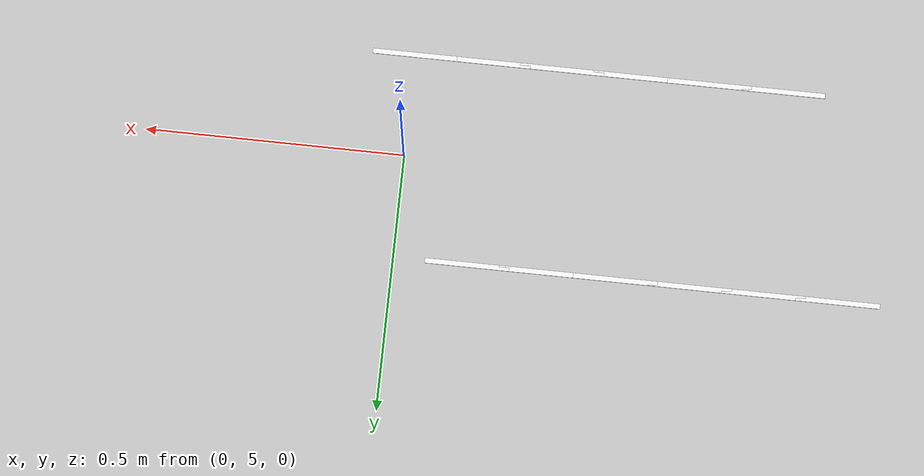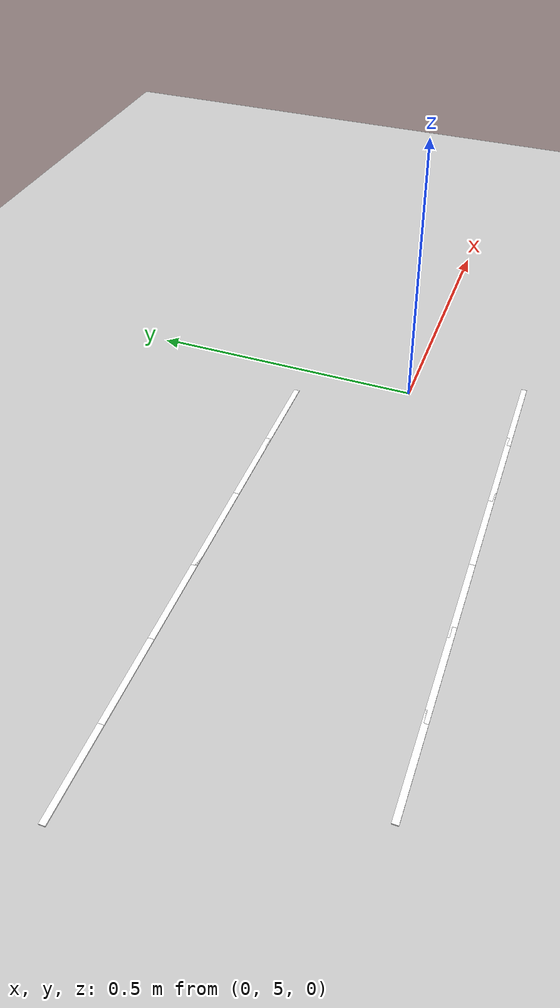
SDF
<sdf version="1.7">
 <world name="default">
  <model name="ground_plane">
   <static>1</static>
   <link name="link">
    <collision name="collision">
     <geometry><plane><normal>0 0 1</normal><size>100 100</size></plane></geometry>
     <surface>
      <contact><collide_bitmask>65535</collide_bitmask></contact>
      <friction><ode><mu>100</mu><mu2>50</mu2></ode></friction>
     </surface>
    </collision>
    <visual name="visual">
     <cast_shadows>0</cast_shadows>
     <geometry><plane><normal>0 0 1</normal><size>100 100</size></plane></geometry>
     <material>
      <script><uri>file://media/materials/scripts/gazebo.material</uri><name>Gazebo/Grey</name></script>
     </material>
    </visual>
   </link>
  </model>
  <model name="lane_line_left_224">
   <static>1</static>
   <link name="link">
    <pose>0 0 -0.004 0 -0 0</pose>
    <visual name="visual">
     <geometry><box><size>0.1629 0.01 0.01</size></box></geometry>
     <material><ambient>1 1 1 1</ambient><diffuse>1 1 1 1</diffuse></material>
    </visual>
    <collision name="collision"><geometry><box><size>0.1629 0.01 0.01</size></box></geometry></collision>
   </link>
   <pose>0 4.8 0 0 -0 3.14159</pose>
  </model>
  <model name="lane_line_left_225">
   <static>1</static>
   <link name="link">
    <pose>0 0 -0.004 0 -0 0</pose>
    <visual name="visual">
     <geometry><box><size>0.1629 0.01 0.01</size></box></geometry>
     <material><ambient>1 1 1 1</ambient><diffuse>1 1 1 1</diffuse></material>
    </visual>
    <collision name="collision"><geometry><box><size>0.1629 0.01 0.01</size></box></geometry></collision>
   </link>
   <pose>-0.142857 4.8 0 0 -0 3.14159</pose>
  </model>
  <model name="lane_line_right_225">
   <static>1</static>
   <link name="link">
    <pose>0 0 -0.004 0 -0 0</pose>
    <visual name="visual">
     <geometry><box><size>0.1629 0.01 0.01</size></box></geometry>
     <material><ambient>1 1 1 1</ambient><diffuse>1 1 1 1</diffuse></material>
    </visual>
    <collision name="collision"><geometry><box><size>0.1629 0.01 0.01</size></box></geometry></collision>
   </link>
   <pose>-0.142857 5.2 0 0 -0 3.14159</pose>
  </model>
  <model name="lane_line_left_226">
   <static>1</static>
   <link name="link">
    <pose>0 0 -0.004 0 -0 0</pose>
    <visual name="visual">
     <geometry><box><size>0.1629 0.01 0.01</size></box></geometry>
     <material><ambient>1 1 1 1</ambient><diffuse>1 1 1 1</diffuse></material>
    </visual>
    <collision name="collision"><geometry><box><size>0.1629 0.01 0.01</size></box></geometry></collision>
   </link>
   <pose>-0.285714 4.8 0 0 -0 3.14159</pose>
  </model>
  <model name="lane_line_right_226">
   <static>1</static>
   <link name="link">
    <pose>0 0 -0.004 0 -0 0</pose>
    <visual name="visual">
     <geometry><box><size>0.1629 0.01 0.01</size></box></geometry>
     <material><ambient>1 1 1 1</ambient><diffuse>1 1 1 1</diffuse></material>
    </visual>
    <collision name="collision"><geometry><box><size>0.1629 0.01 0.01</size></box></geometry></collision>
   </link>
   <pose>-0.285714 5.2 0 0 -0 3.14159</pose>
  </model>
  <model name="lane_line_left_227">
   <static>1</static>
   <link name="link">
    <pose>0 0 -0.004 0 -0 0</pose>
    <visual name="visual">
     <geometry><box><size>0.1629 0.01 0.01</size></box></geometry>
     <material><ambient>1 1 1 1</ambient><diffuse>1 1 1 1</diffuse></material>
    </visual>
    <collision name="collision"><geometry><box><size>0.1629 0.01 0.01</size></box></geometry></collision>
   </link>
   <pose>-0.428571 4.8 0 0 -0 3.14159</pose>
  </model>
  <model name="lane_line_right_227">
   <static>1</static>
   <link name="link">
    <pose>0 0 -0.004 0 -0 0</pose>
    <visual name="visual">
     <geometry><box><size>0.1629 0.01 0.01</size></box></geometry>
     <material><ambient>1 1 1 1</ambient><diffuse>1 1 1 1</diffuse></material>
    </visual>
    <collision name="collision"><geometry><box><size>0.1629 0.01 0.01</size></box></geometry></collision>
   </link>
   <pose>-0.428571 5.2 0 0 -0 3.14159</pose>
  </model>
  <model name="lane_line_left_228">
   <static>1</static>
   <link name="link">
    <pose>0 0 -0.004 0 -0 0</pose>
    <visual name="visual">
     <geometry><box><size>0.1629 0.01 0.01</size></box></geometry>
     <material><ambient>1 1 1 1</ambient><diffuse>1 1 1 1</diffuse></material>
    </visual>
    <collision name="collision"><geometry><box><size>0.1629 0.01 0.01</size></box></geometry></collision>
   </link>
   <pose>-0.571429 4.8 0 0 -0 3.14159</pose>
  </model>
  <model name="lane_line_right_228">
   <static>1</static>
   <link name="link">
    <pose>0 0 -0.004 0 -0 0</pose>
    <visual name="visual">
     <geometry><box><size>0.1629 0.01 0.01</size></box></geometry>
     <material><ambient>1 1 1 1</ambient><diffuse>1 1 1 1</diffuse></material>
    </visual>
    <collision name="collision"><geometry><box><size>0.1629 0.01 0.01</size></box></geometry></collision>
   </link>
   <pose>-0.571429 5.2 0 0 -0 3.14159</pose>
  </model>
  <model name="lane_line_left_229">
   <static>1</static>
   <link name="link">
    <pose>0 0 -0.004 0 -0 0</pose>
    <visual name="visual">
     <geometry><box><size>0.1629 0.01 0.01</size></box></geometry>
     <material><ambient>1 1 1 1</ambient><diffuse>1 1 1 1</diffuse></material>
    </visual>
    <collision name="collision"><geometry><box><size>0.1629 0.01 0.01</size></box></geometry></collision>
   </link>
   <pose>-0.714286 4.8 0 0 -0 3.14159</pose>
  </model>
  <model name="lane_line_right_229">
   <static>1</static>
   <link name="link">
    <pose>0 0 -0.004 0 -0 0</pose>
    <visual name="visual">
     <geometry><box><size>0.1629 0.01 0.01</size></box></geometry>
     <material><ambient>1 1 1 1</ambient><diffuse>1 1 1 1</diffuse></material>
    </visual>
    <collision name="collision"><geometry><box><size>0.1629 0.01 0.01</size></box></geometry></collision>
   </link>
   <pose>-0.714286 5.2 0 0 -0 3.14159</pose>
  </model>
  <model name="lane_line_right_230">
   <static>1</static>
   <link name="link">
    <pose>0 0 -0.004 0 -0 0</pose>
    <visual name="visual">
     <geometry><box><size>0.1629 0.01 0.01</size></box></geometry>
     <material><ambient>1 1 1 1</ambient><diffuse>1 1 1 1</diffuse></material>
    </visual>
    <collision name="collision"><geometry><box><size>0.1629 0.01 0.01</size></box></geometry></collision>
   </link>
   <pose>-0.857143 5.2 0 0 -0 3.14159</pose>
  </model>
 </world>
</sdf>
